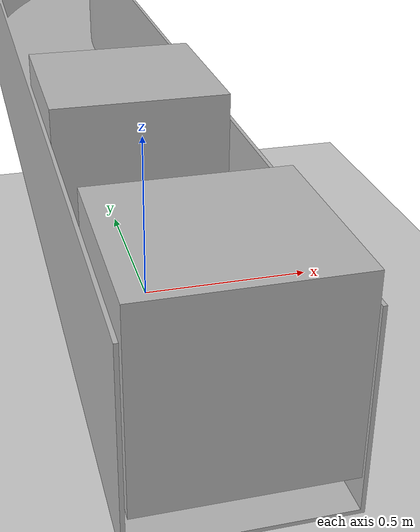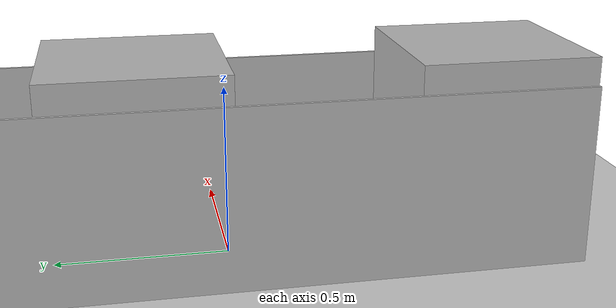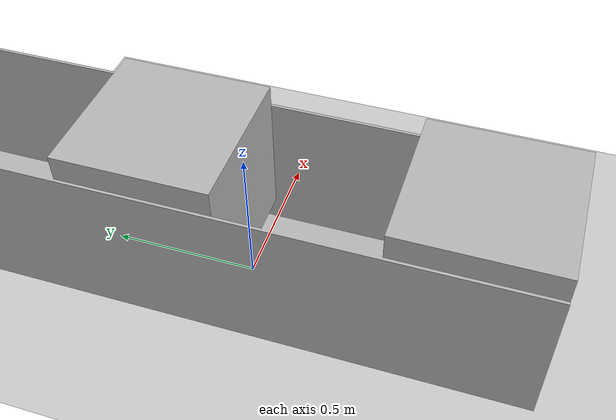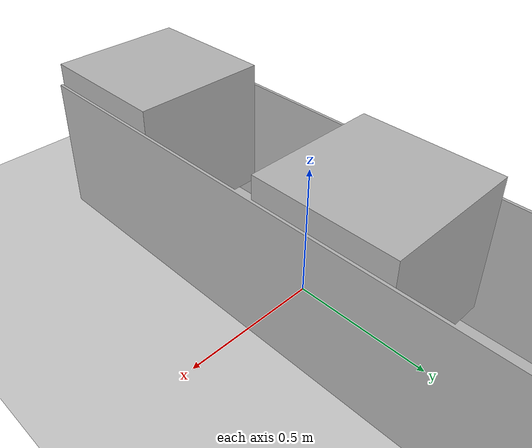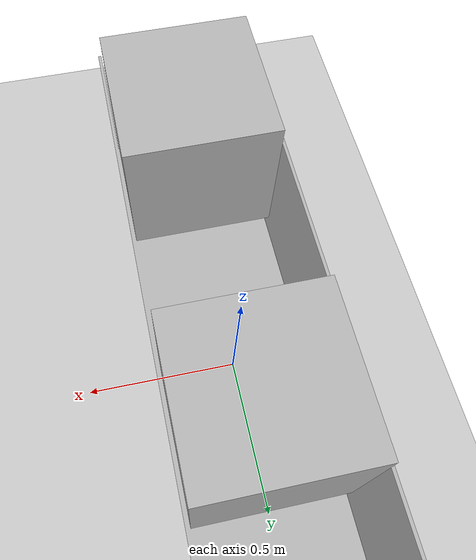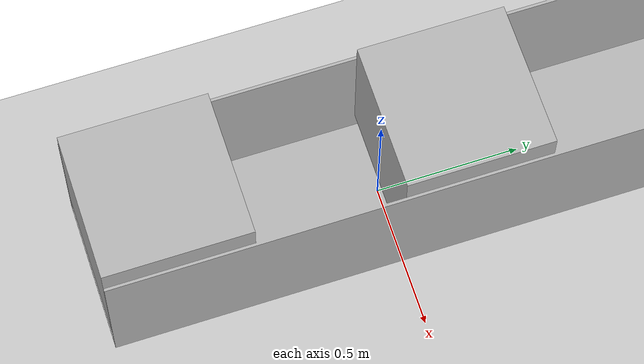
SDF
<?xml version="1.0"?>
<sdf version="1.4">
  <world name="default">

    <include>
      <uri>model://ground_plane</uri>
    </include>

    <include>
      <uri>model://sun</uri>
    </include>

    <model name="tube">
      <pose>0 0 0  0 3.1415927 0</pose>
      <static>true</static>

      <link name="tube_base_link">
        <visual name="visual">
          <geometry>
            <mesh><uri>file://tube_10m_sin.dae</uri></mesh>
          </geometry>
        </visual>

        <collision name="collision">
          <geometry>
            <mesh><uri>file://tube_10m_sin.dae</uri></mesh>
          </geometry>
        </collision>
      </link>
    </model>

    <include>
      <uri>model://aruco_visual_marker_26</uri>
      <pose>0 0.25 0.35  0 0 0</pose>
    </include>

    <include>
      <uri>model://camera</uri>
      <pose>0 -0.75 0.35  0 0 0</pose>
    </include>

  </world>
</sdf>

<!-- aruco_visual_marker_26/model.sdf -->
<sdf version="1.5">
  <model name="aruco_visual_marker_26">
    <pose>0 0 0 0 0 0</pose>
    <static>false</static>

    <link name="aruco_link_base">

      <visual name="visual">
        <geometry>
          <box>
            <size>0.5 0.5 0.5</size>
          </box>
        </geometry>
        <material>
          <script>
            <uri>model://aruco_visual_marker_26/materials/scripts</uri>
            <uri>model://aruco_visual_marker_26/materials/textures</uri>
            <name>ArucoVisualMarker26/Marker</name>
          </script>
          <emissive>1 1 1 1</emissive>
        </material>
      </visual>

      <collision name="collision">
        <geometry>
          <box>
            <size>0.5 0.5 0.5</size>
          </box>
        </geometry>
      </collision>

    </link>

    <plugin name="aruco_move" filename="libgazebo_ros_planar_move.so">
      <commandTopic>aruco_cmd_vel</commandTopic>
      <odometryTopic>odom</odometryTopic>
      <odometryFrame>odom</odometryFrame>                         <!-- header frame id -->
      <robotBaseFrame>aruco_link_base</robotBaseFrame>            <!-- child  frame id -->
    </plugin>

  </model>
</sdf>

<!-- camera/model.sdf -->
<sdf version="1.5">
  <model name="camera">
    <pose>0 0 0 0 0 0</pose>
    <static>false</static>

    <link name="camera_link_base">

      <visual name="visual">
        <geometry>
          <box>
            <size>0.5 0.5 0.5</size>
          </box>
        </geometry>
      </visual>

      <collision name="collision">
        <geometry>
          <box>
            <size>0.5 0.5 0.5</size>
          </box>
        </geometry>
      </collision>

      <sensor name="camera_link_camera" type="camera">
        <pose>0 0 0 0 0 1.570796327</pose>

        <camera>
          <horizontal_fov>1.222</horizontal_fov>
          <image>
            <width>1920</width>
            <height>1080</height>
            <format>R8G8B8</format>
          </image>
        </camera>

        <always_on>1</always_on>
        <update_rate>30</update_rate>
        <visualize>true</visualize>

        <plugin name="camera_controller" filename="libgazebo_ros_camera.so">
          <cameraName>camera</cameraName>
          <imageTopicName>image_raw</imageTopicName>
          <cameraInfoTopicName>camera_info</cameraInfoTopicName>
          <odometryTopic>odom</odometryTopic>
          <odometryFrame>odom</odometryFrame>
          <frameName>camera_link_optical</frameName>
        </plugin>

      </sensor>

    </link>

    <!-- model plugin -->
    <plugin name="camera_move" filename="libgazebo_ros_planar_move.so">
      <commandTopic>camera_cmd_vel</commandTopic>
      <odometryTopic>odom</odometryTopic>
      <odometryFrame>odom</odometryFrame>                         <!-- header frame id -->
      <robotBaseFrame>camera_link_base</robotBaseFrame>           <!-- child  frame id -->
    </plugin>

  </model>
</sdf>
